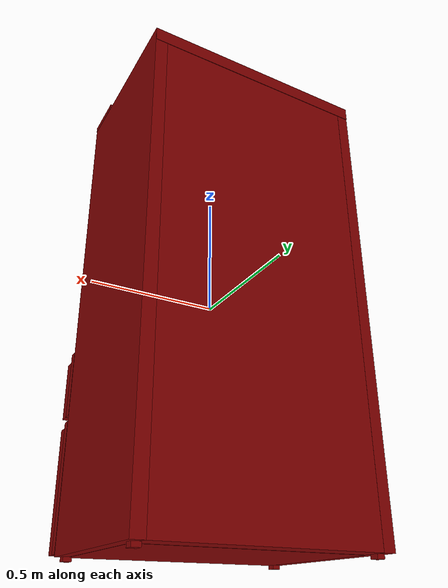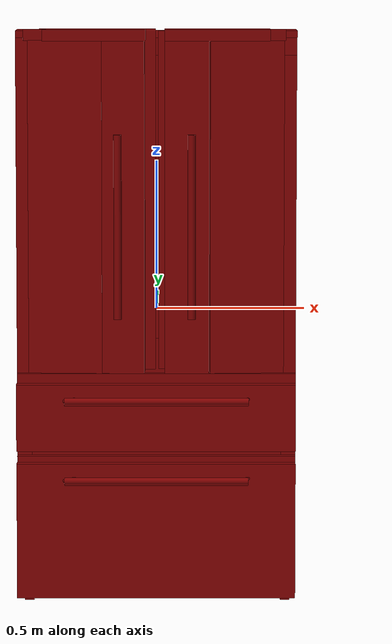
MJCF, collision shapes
<mujoco model="model">
  <compiler angle="radian"/>
  <asset>
    <mesh file="visuals/Body001.obj" name="Body001_vis"/>
    <mesh file="visuals/Body001_Clear.obj" name="Body001_Clear_vis"/>
    <mesh file="visuals/Door001.obj" name="Door001_vis"/>
    <mesh file="visuals/Door002.obj" name="Door002_vis"/>
    <mesh file="visuals/Drawer001.obj" name="Drawer001_vis"/>
    <mesh file="visuals/Drawer002.obj" name="Drawer002_vis"/>
    <texture file="visuals/T_BC001.png" name="Body001_material" type="2d"/>
    <material name="Body001_material" rgba="1 1 1 1.0" texture="Body001_material" shininess="0.141421377658844" specular="0.3103448502657381"/>
    <texture file="visuals/T_BC001.png" name="Body001_Clear_material" type="2d"/>
    <material name="Body001_Clear_material" rgba="1 1 1 0.20000000298023224" texture="Body001_Clear_material" shininess="0.141421377658844" specular="0.3103448502657381"/>
    <texture file="visuals/T_BC001.png" name="Door001_material" type="2d"/>
    <material name="Door001_material" rgba="1 1 1 1.0" texture="Door001_material" shininess="0.141421377658844" specular="0.3103448502657381"/>
    <texture file="visuals/T_BC001.png" name="Door002_material" type="2d"/>
    <material name="Door002_material" rgba="1 1 1 1.0" texture="Door002_material" shininess="0.141421377658844" specular="0.3103448502657381"/>
    <texture file="visuals/T_BC001.png" name="Drawer001_material" type="2d"/>
    <material name="Drawer001_material" rgba="1 1 1 1.0" texture="Drawer001_material" shininess="0.141421377658844" specular="0.3103448502657381"/>
    <texture file="visuals/T_BC001.png" name="Drawer002_material" type="2d"/>
    <material name="Drawer002_material" rgba="1 1 1 1.0" texture="Drawer002_material" shininess="0.141421377658844" specular="0.3103448502657381"/>
  </asset>
  <default>
    <default class="visual">
      <geom conaffinity="0" contype="0" group="1" type="mesh"/>
    </default>
    <default class="collision">
      <geom group="0" rgba="0.5 0 0 0.5"/>
    </default>
    <default class="spawn">
      <geom group="0" rgba="1 1 1 0.5" contype="0" conaffinity="0"/>
      <site group="0" rgba="1 1 1 0.5"/>
    </default>
    <default class="region">
      <geom group="1" conaffinity="0" contype="0" rgba="0 1 0 0"/>
    </default>
  </default>
  <worldbody>
    <body>
      <body name="object">
        <geom mesh="Body001_vis" type="mesh" solimp="0.998 0.998 0.001" solref="0.001 1" density="100" friction="0.95 0.3 0.1" class="visual" material="Body001_material"/>
        <geom class="collision" type="box" pos="0.429724 0.368653 -0.947957" size="0.015452206134796143 0.016618922352790833 0.00845328625291586" quat="1.0 0.0 0.0 0.0"/>
        <geom class="collision" type="box" pos="0.429724 -0.238435 -0.947957" size="0.015452208928763866 0.016618922352790833 0.008453287184238434" quat="1.0 0.0 0.0 0.0"/>
        <geom class="collision" type="box" pos="-0.426029 0.368653 -0.947957" size="0.015452210791409016 0.016618922352790833 0.008453288115561008" quat="1.0 0.0 0.0 0.0"/>
        <geom class="collision" type="box" pos="-0.426029 -0.238435 -0.947957" size="0.015452212654054165 0.016618922352790833 0.008453289978206158" quat="1.0 0.0 0.0 0.0"/>
        <geom class="collision" type="box" pos="0.001652 0.029614 -0.921086" size="0.4197624623775482 0.2938579022884369 0.019754983484745026" quat="1.0 0.0 0.0 0.0"/>
        <geom class="collision" type="box" pos="0.001652 0.023140 -0.455490" size="0.41976141929626465 0.2873835861682892 0.02940518967807293" quat="1.0 0.0 0.0 0.0"/>
        <geom class="collision" type="box" pos="0.001652 0.028759 -0.130860" size="0.41976049542427063 0.2930029332637787 0.06129428371787071" quat="1.0 0.0 0.0 0.0"/>
        <geom class="collision" type="box" pos="0.409497 0.039354 0.546001" size="0.004965109284967184 0.2484188973903656 0.004120341967791319" quat="1.0 0.0 0.0 0.0"/>
        <geom class="collision" type="box" pos="0.409497 0.039354 0.562526" size="0.00523786386474967 0.24841874837875366 0.0041762590408325195" quat="1.0 0.0 0.0 0.0"/>
        <geom class="collision" type="box" pos="0.409497 0.039354 0.228411" size="0.004965109284967184 0.24844639003276825 0.003662212286144495" quat="1.0 0.0 0.0 0.0"/>
        <geom class="collision" type="box" pos="0.409497 0.039354 0.244936" size="0.005118096712976694 0.24841846525669098 0.0040624430403113365" quat="1.0 0.0 0.0 0.0"/>
        <geom class="collision" type="box" pos="0.013517 0.039354 0.086836" size="0.004965109284967184 0.24844534695148468 0.0036621959879994392" quat="1.0 0.0 0.0 0.0"/>
        <geom class="collision" type="box" pos="0.013517 0.039354 0.103361" size="0.004965109284967184 0.2484448254108429 0.0036621878389269114" quat="1.0 0.0 0.0 0.0"/>
        <geom class="collision" type="box" pos="0.012652 0.039354 0.546001" size="0.004965109284967184 0.24843116104602814 0.004065902903676033" quat="1.0 0.0 0.0 0.0"/>
        <geom class="collision" type="box" pos="0.012652 0.039354 0.562526" size="0.004964869469404221 0.24843083322048187 0.004071592818945646" quat="1.0 0.0 0.0 0.0"/>
        <geom class="collision" type="box" pos="0.012318 0.039354 0.228411" size="0.005064914934337139 0.25341320037841797 0.0037354223895817995" quat="1.0 0.0 0.0 0.0"/>
        <geom class="collision" type="box" pos="0.012742 0.039354 0.244936" size="0.005434778518974781 0.24841758608818054 0.004008330404758453" quat="1.0 0.0 0.0 0.0"/>
        <geom class="collision" type="box" pos="-0.011370 0.039354 0.546001" size="0.005151953548192978 0.24842916429042816 0.0037997474428266287" quat="1.0 0.0 0.0 0.0"/>
        <geom class="collision" type="box" pos="-0.011740 0.039354 0.562526" size="0.005262718070298433 0.25578537583351135 0.004231852944940329" quat="1.0 0.0 0.0 0.0"/>
        <geom class="collision" type="box" pos="-0.011435 0.039354 0.228411" size="0.00543074868619442 0.24842849373817444 0.0040053571574389935" quat="1.0 0.0 0.0 0.0"/>
        <geom class="collision" type="box" pos="-0.011578 0.039354 0.244936" size="0.00524125574156642 0.24842816591262817 0.003865764709189534" quat="1.0 0.0 0.0 0.0"/>
        <geom class="collision" type="box" pos="-0.410463 0.039354 0.546001" size="0.004965109284967184 0.24842716753482819 0.003950835205614567" quat="1.0 0.0 0.0 0.0"/>
        <geom class="collision" type="box" pos="-0.410463 0.039354 0.562526" size="0.004965109284967184 0.24841538071632385 0.0040469723753631115" quat="1.0 0.0 0.0 0.0"/>
        <geom class="collision" type="box" pos="-0.410463 0.039354 0.228411" size="0.004965109284967184 0.248437762260437 0.0036620774772018194" quat="1.0 0.0 0.0 0.0"/>
        <geom class="collision" type="box" pos="-0.410463 0.039354 0.244936" size="0.0052332691848278046 0.2484261691570282 0.004060378763824701" quat="1.0 0.0 0.0 0.0"/>
        <geom class="collision" type="box" pos="0.000313 0.024005 0.403024" size="0.00741640804335475 0.2826918363571167 0.47791850566864014" quat="1.0 0.0 0.0 0.0"/>
        <geom class="collision" type="box" pos="0.444469 -0.175696 0.937778" size="0.019508318975567818 0.09012862294912338 0.01091246958822012" quat="1.0 0.0 0.0 0.0"/>
        <geom class="collision" type="box" pos="-0.443556 -0.175696 0.937778" size="0.019678855314850807 0.090128593146801 0.01091246958822012" quat="1.0 0.0 0.0 0.0"/>
        <geom class="collision" type="box" pos="-0.000592 0.075833 0.897864" size="0.4632018804550171 0.3402913212776184 0.02843247912824154" quat="1.0 0.0 0.0 0.0"/>
        <geom class="collision" type="box" pos="0.438296 0.075140 -0.006954" size="0.024661026895046234 0.33958375453948975 0.9331269264221191" quat="1.0 0.0 0.0 0.0"/>
        <geom class="collision" type="box" pos="0.001242 0.360641 -0.006954" size="0.41877856850624084 0.053731124848127365 0.933128297328949" quat="1.0 0.0 0.0 0.0"/>
        <geom class="collision" type="box" pos="-0.438653 0.075008 -0.006954" size="0.02449876256287098 0.33946719765663147 0.933157742023468" quat="1.0 0.0 0.0 0.0"/>
        <geom class="collision" type="box" pos="-0.000343 -0.213012 0.554301" size="0.4142344295978546 0.007532671093940735 0.00513013731688261" quat="1.0 0.0 0.0 0.0"/>
        <geom class="collision" type="box" pos="-0.000343 -0.213012 0.237451" size="0.4142347574234009 0.007532680872827768 0.005130141042172909" quat="1.0 0.0 0.0 0.0"/>
        <body name="Body001_Clear">
          <geom mesh="Body001_Clear_vis" type="mesh" solimp="0.998 0.998 0.001" solref="0.001 1" density="100" friction="0.95 0.3 0.1" class="visual" material="Body001_Clear_material"/>
          <geom class="collision" type="box" pos="-0.006327 0.030347 0.554337" size="0.42695167660713196 0.2501843273639679 0.00323467212729156" quat="1.0 0.0 0.0 0.0"/>
          <geom class="collision" type="box" pos="-0.006327 0.030347 0.236299" size="0.42695072293281555 0.2501838505268097 0.0032346646767109632" quat="1.0 0.0 0.0 0.0"/>
        </body>
        <body name="Door001">
          <joint axis="0.0 0.0 -1.0" pos="-0.410687 -0.318783 0.394757" limited="true" name="Door001_joint" range="0.0 1.5707963267948966" type="hinge" damping="1" frictionloss="1" armature=".01" stiffness="0.05"/>
          <geom mesh="Door001_vis" type="mesh" solimp="0.998 0.998 0.001" solref="0.001 1" density="100" friction="0.95 0.3 0.1" class="visual" material="Door001_material"/>
          <geom class="collision" type="cylinder" pos="-0.125547 -0.383509 0.599979" size="0.0059707011096179485 0.013477122411131859" quat="0.7070278525352478 -0.7070278525352478 -0.01056497823446989 0.010564975440502167"/>
          <geom class="collision" type="cylinder" pos="-0.125443 -0.384214 0.027234" size="0.006665780674666166 0.015046040527522564" quat="0.7087106108665466 -0.7053312063217163 -0.011215515434741974 0.010553276166319847"/>
          <geom class="collision" type="cylinder" pos="-0.125653 -0.405130 0.314014" size="0.013059794902801514 0.3021082580089569" quat="1.0 0.0 0.0 0.0"/>
          <geom class="collision" type="box" pos="-0.228563 -0.216914 -0.022351" size="0.16859816014766693 0.004116177558898926 0.030971597880125046" quat="0.9963588118553162 0.08525944501161575 0.0 0.0"/>
          <geom class="collision" type="box" pos="-0.055072 -0.248726 -0.023501" size="0.004358790349215269 0.031423576176166534 0.030969230458140373" quat="1.0 0.0 0.0 0.0"/>
          <geom class="collision" type="box" pos="-0.406873 -0.248726 -0.023501" size="0.0041392091661691666 0.03142356872558594 0.030969224870204926" quat="1.0 0.0 0.0 0.0"/>
          <geom class="collision" type="box" pos="-0.231563 -0.215245 0.450490" size="0.17223690450191498 0.004125186707824469 0.030971385538578033" quat="0.996243953704834 0.08659066259860992 0.0 0.0"/>
          <geom class="collision" type="box" pos="-0.053978 -0.248726 0.449028" size="0.004358792211860418 0.031423553824424744 0.03096920996904373" quat="1.0 0.0 0.0 0.0"/>
          <geom class="collision" type="box" pos="-0.405767 -0.248726 0.449028" size="0.004139211028814316 0.031423550099134445 0.030969204381108284" quat="1.0 0.0 0.0 0.0"/>
          <geom class="collision" type="box" pos="-0.228567 -0.216987 0.760128" size="0.17530789971351624 0.004569387529045343 0.030971171334385872" quat="0.9948698282241821 0.10116351395845413 0.0 0.0"/>
          <geom class="collision" type="box" pos="-0.054938 -0.248726 0.760128" size="0.0043587940745055676 0.03142353519797325 0.03096919134259224" quat="1.0 0.0 0.0 0.0"/>
          <geom class="collision" type="box" pos="-0.405104 -0.248726 0.760128" size="0.004139212891459465 0.031423527747392654 0.030969183892011642" quat="1.0 0.0 0.0 0.0"/>
          <geom class="collision" type="box" pos="-0.192479 -0.286385 0.393817" size="0.19073475897312164 0.013310156762599945 0.5623584985733032" quat="1.0 0.0 0.0 0.0"/>
          <geom class="collision" type="box" pos="-0.396171 -0.335131 0.938540" size="0.016765747219324112 0.03794625774025917 0.01811930723488331" quat="5.47567395869919e-08 0.7252750396728516 -0.6884592175483704 -5.19772278551045e-08"/>
          <geom class="collision" type="box" pos="-0.203330 -0.328498 0.937901" size="0.16860564053058624 0.04184086248278618 0.018307212740182877" quat="1.0 0.0 0.0 0.0"/>
          <geom class="collision" type="box" pos="-0.217612 -0.248847 -0.050966" size="0.1768990457057953 0.033528294414281845 0.0057500023394823074" quat="1.0 0.0 0.0 0.0"/>
          <geom class="collision" type="box" pos="-0.219051 -0.248847 0.423744" size="0.17689946293830872 0.033528294414281845 0.0057500023394823074" quat="1.0 0.0 0.0 0.0"/>
          <geom class="collision" type="box" pos="-0.219051 -0.248847 0.728987" size="0.17689988017082214 0.033528294414281845 0.0057500023394823074" quat="1.0 0.0 0.0 0.0"/>
          <geom class="collision" type="box" pos="-0.109925 -0.331237 0.374080" size="0.07177040725946426 0.03707968816161156 0.546674907207489" quat="0.9998984932899475 0.0 -0.0 -0.014248380437493324"/>
          <geom class="collision" type="box" pos="-0.296734 -0.322991 0.374080" size="0.1213095560669899 0.037747614085674286 0.546674907207489" quat="0.999497652053833 0.0 -0.0 -0.031693264842033386"/>
        </body>
        <body name="Door002">
          <joint axis="0.0 0.0 1.0" pos="0.409653 -0.318481 0.394757" limited="true" name="Door002_joint" range="0.0 1.5707963267948966" type="hinge" damping="1" frictionloss="1" armature=".01" stiffness="0.05"/>
          <geom mesh="Door002_vis" type="mesh" solimp="0.998 0.998 0.001" solref="0.001 1" density="100" friction="0.95 0.3 0.1" class="visual" material="Door002_material"/>
          <geom class="collision" type="cylinder" pos="0.116424 -0.383119 0.599991" size="0.0059707011096179485 0.013477125205099583" quat="0.7070278525352478 0.7070278525352478 0.010564973577857018 0.010564976371824741"/>
          <geom class="collision" type="cylinder" pos="0.116313 -0.383820 0.027247" size="0.006665780674666166 0.015046040527522564" quat="0.7053312063217163 0.7087106108665466 0.010553276166319847 0.011215515434741974"/>
          <geom class="collision" type="cylinder" pos="0.116579 -0.404769 0.314025" size="0.013059794902801514 0.3021082580089569" quat="7.549790126404332e-08 1.0 0.0 0.0"/>
          <geom class="collision" type="box" pos="0.191890 -0.285890 0.392106" size="0.18454386293888092 0.013335787691175938 0.5577128529548645" quat="1.0 0.0 0.0 0.0"/>
          <geom class="collision" type="box" pos="0.391080 -0.337452 0.938540" size="0.01632891409099102 0.03254632279276848 0.01811930723488331" quat="0.6884592175483704 0.0 0.0 0.7252750396728516"/>
          <geom class="collision" type="box" pos="0.200438 -0.330169 0.938081" size="0.17174986004829407 0.0403461717069149 0.018486905843019485" quat="1.0 0.0 0.0 0.0"/>
          <geom class="collision" type="box" pos="0.232140 -0.215884 -0.022996" size="0.16859816014766693 0.004494696389883757 0.03096994198858738" quat="0.9960789680480957 0.08846882730722427 0.0 0.0"/>
          <geom class="collision" type="box" pos="0.403896 -0.248726 -0.023501" size="0.00435880571603775 0.0314234122633934 0.03096906840801239" quat="1.0 0.0 0.0 0.0"/>
          <geom class="collision" type="box" pos="0.054103 -0.248726 -0.023501" size="0.00413922406733036 0.031423404812812805 0.030969062820076942" quat="1.0 0.0 0.0 0.0"/>
          <geom class="collision" type="box" pos="0.229906 -0.217087 0.450795" size="0.17454703152179718 0.005378412548452616 0.03096972592175007" quat="0.9950945973396301 0.09892809391021729 0.0 0.0"/>
          <geom class="collision" type="box" pos="0.405429 -0.248726 0.449028" size="0.0043588075786828995 0.03142339363694191 0.03096904791891575" quat="1.0 0.0 0.0 0.0"/>
          <geom class="collision" type="box" pos="0.054103 -0.248726 0.449028" size="0.00413922592997551 0.03142338618636131 0.0309690423309803" quat="1.0 0.0 0.0 0.0"/>
          <geom class="collision" type="box" pos="0.229150 -0.219901 0.760598" size="0.1734909564256668 0.007307406980544329 0.030969513580203056" quat="0.9979870319366455 0.06341830641031265 0.0 0.0"/>
          <geom class="collision" type="box" pos="0.405557 -0.248726 0.760128" size="0.004358809441328049 0.03142337128520012 0.030969027429819107" quat="1.0 0.0 0.0 0.0"/>
          <geom class="collision" type="box" pos="0.051608 -0.248726 0.760128" size="0.004139227792620659 0.03142336755990982 0.03096902184188366" quat="1.0 0.0 0.0 0.0"/>
          <geom class="collision" type="box" pos="0.227631 -0.248847 -0.050966" size="0.17690397799015045 0.033528294414281845 0.0057500023394823074" quat="1.0 0.0 0.0 0.0"/>
          <geom class="collision" type="box" pos="0.226192 -0.248847 0.423744" size="0.17690439522266388 0.033528294414281845 0.0057500023394823074" quat="1.0 0.0 0.0 0.0"/>
          <geom class="collision" type="box" pos="0.226192 -0.248847 0.728987" size="0.1769048124551773 0.033528294414281845 0.0057500023394823074" quat="1.0 0.0 0.0 0.0"/>
          <geom class="collision" type="box" pos="0.100828 -0.331164 0.374080" size="0.07223226130008698 0.0386333093047142 0.5466800332069397" quat="1.0 0.0 0.0 0.0"/>
          <geom class="collision" type="box" pos="0.295614 -0.321270 0.374080" size="0.1213095411658287 0.037747614085674286 0.546674907207489" quat="0.9992830157279968 0.0 0.0 0.03786090388894081"/>
        </body>
        <body name="Drawer001">
          <joint axis="0.0 -1.0 0.0" pos="0.000217 -0.058761 -0.310620" limited="true" name="Drawer001_joint" range="0.0 0.4" type="slide" damping="1" frictionloss="1" armature=".01" stiffness="0.05"/>
          <geom mesh="Drawer001_vis" type="mesh" solimp="0.998 0.998 0.001" solref="0.001 1" density="100" friction="0.95 0.3 0.1" class="visual" material="Drawer001_material"/>
          <geom class="collision" type="cylinder" pos="0.287357 -0.369505 -0.261997" size="0.005888763815164566 0.02531414106488228" quat="0.29690465331077576 -0.6417543292045593 -0.29690423607826233 -0.6417529582977295"/>
          <geom class="collision" type="cylinder" pos="-0.286921 -0.369505 -0.261997" size="0.005888763815164566 0.02531414106488228" quat="0.29690465331077576 -0.6417543292045593 -0.29690423607826233 -0.6417529582977295"/>
          <geom class="collision" type="cylinder" pos="0.000479 -0.403721 -0.262068" size="0.013165506534278393 0.30272483825683594" quat="1.3041067177255172e-06 0.7071086168289185 -1.3040988733337144e-06 0.7071049213409424"/>
          <geom class="collision" type="box" pos="-0.000981 -0.324877 -0.325437" size="0.4618731141090393 0.022600825875997543 0.11146873235702515" quat="1.0 0.0 0.0 0.0"/>
          <geom class="collision" type="box" pos="-0.388997 0.002576 -0.309675" size="0.00741642015054822 0.2783614695072174 0.1049349382519722" quat="1.0 0.0 0.0 0.0"/>
          <geom class="collision" type="box" pos="-0.000694 0.001681 -0.411817" size="0.39665767550468445 0.2772745192050934 0.005985238589346409" quat="1.0 0.0 0.0 0.0"/>
          <geom class="collision" type="box" pos="0.390215 0.001139 -0.311793" size="0.009130694903433323 0.276691734790802 0.10773320496082306" quat="1.0 0.0 0.0 0.0"/>
          <geom class="collision" type="box" pos="-0.000118 -0.288972 -0.310044" size="0.4618734121322632 0.015712039545178413 0.1269686222076416" quat="1.0 0.0 0.0 0.0"/>
          <geom class="collision" type="box" pos="0.000210 0.287689 -0.309675" size="0.3907175362110138 0.00741795776411891 0.1049349382519722" quat="1.0 0.0 0.0 0.0"/>
        </body>
        <body name="Drawer002">
          <joint axis="0.0 -1.0 0.0" pos="0.000217 -0.058761 -0.689757" limited="true" name="Drawer002_joint" range="0.0 0.4" type="slide" damping="1" frictionloss="1" armature=".01" stiffness="0.05"/>
          <geom mesh="Drawer002_vis" type="mesh" solimp="0.998 0.998 0.001" solref="0.001 1" density="100" friction="0.95 0.3 0.1" class="visual" material="Drawer002_material"/>
          <geom class="collision" type="cylinder" pos="0.287357 -0.368170 -0.527661" size="0.005888763815164566 0.026645831763744354" quat="0.29690465331077576 -0.6417543292045593 -0.29690423607826233 -0.6417529582977295"/>
          <geom class="collision" type="cylinder" pos="0.000479 -0.403721 -0.527731" size="0.013165506534278393 0.30272483825683594" quat="1.3041067177255172e-06 0.7071086168289185 -1.3040988733337144e-06 0.7071049213409424"/>
          <geom class="collision" type="cylinder" pos="-0.286921 -0.368170 -0.527661" size="0.005888763815164566 0.026645831763744354" quat="0.29690465331077576 -0.6417543292045593 -0.29690423607826233 -0.6417529582977295"/>
          <geom class="collision" type="box" pos="-0.000981 -0.327377 -0.705370" size="0.46187272667884827 0.020100750029087067 0.2257368564605713" quat="1.0 0.0 0.0 0.0"/>
          <geom class="collision" type="box" pos="-0.388997 -0.005686 -0.682389" size="0.007416411768645048 0.2721869647502899 0.1878126859664917" quat="1.0 0.0 0.0 0.0"/>
          <geom class="collision" type="box" pos="0.391932 -0.007203 -0.682389" size="0.0074164122343063354 0.2705981731414795 0.1878127157688141" quat="1.0 0.0 0.0 0.0"/>
          <geom class="collision" type="box" pos="0.000286 0.273204 -0.681189" size="0.3966912031173706 0.007516638375818729 0.18661190569400787" quat="1.0 0.0 0.0 0.0"/>
          <geom class="collision" type="box" pos="-0.000118 -0.290180 -0.695313" size="0.46187296509742737 0.016192086040973663 0.2357122302055359" quat="1.0 0.0 0.0 0.0"/>
          <geom class="collision" type="box" pos="-0.000694 -0.006325 -0.875742" size="0.3966605067253113 0.27090662717819214 0.00598528329282999" quat="1.0 0.0 0.0 0.0"/>
        </body>
        <geom class="region" name="reg_main" type="box" pos="-1.4999999999876223e-06 0.022952 -4.650000000000487e-05" size="0.4641015 0.39380099999999996 0.9570795000000001"/>
      </body>
    </body>
  </worldbody>
  <actuator>
    <motor name="Door001_joint_actuator" joint="Door001_joint" gear="50"/>
    <motor name="Door002_joint_actuator" joint="Door002_joint" gear="50"/>
    <motor name="Drawer001_joint_actuator" joint="Drawer001_joint" gear="50"/>
    <motor name="Drawer002_joint_actuator" joint="Drawer002_joint" gear="50"/>
  </actuator>
</mujoco>
